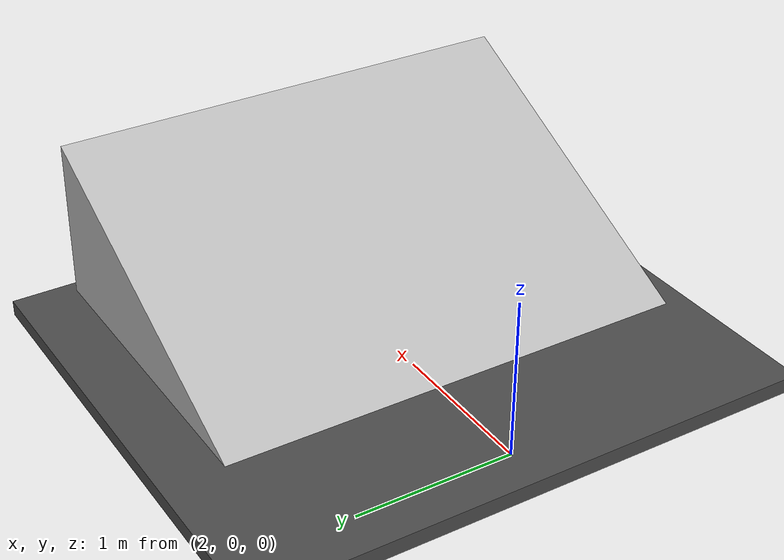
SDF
<?xml version="1.0" ?>
<sdf version="1.5">
  <model name="Textramp">
    <static>true</static>
    <link name="link">

      <collision name="collision">
	<pose>0 0 0  0 0 0 </pose>
        <geometry>
          <box>
            <size>100 100 0.1</size>
          </box>
        </geometry>
      </collision>

      <visual name="visual">
        <cast_shadows>false</cast_shadows>
	<pose>0 0 0  0 0 0 </pose>
        <geometry>
          <box>
            <size>100 100 0.1</size>
          </box>
        </geometry>
        <material>
          <script>
            <uri>model://atextramp/materials/scripts</uri>
            <uri>model://atextramp/materials/textures</uri>
            <name>vrc/asphalt</name>
          </script>
        </material>
      </visual>

      <collision name="collision2">
	<pose>2.5 0 0.2  0 0 0 </pose>
        <geometry>
          <mesh>
            <uri>model://atextramp/TestRamp.dae</uri>
          </mesh>
        </geometry>
      </collision>

      <visual name="visual2">
	<pose>2.5 0 0.2  0 0 0 </pose>
        <cast_shadows>true</cast_shadows>
        <geometry>
          <mesh>
            <uri>model://atextramp/TestRamp.dae</uri>
          </mesh>
        </geometry>
        <texture>
          <script>
            <uri>model://atextramp/materials/scripts</uri>
            <uri>model://atextramp/materials/textures</uri>
            <name>vrc/asphalt</name>
          </script>
        </texture>
      </visual>
    </link>
  </model>
</sdf>
